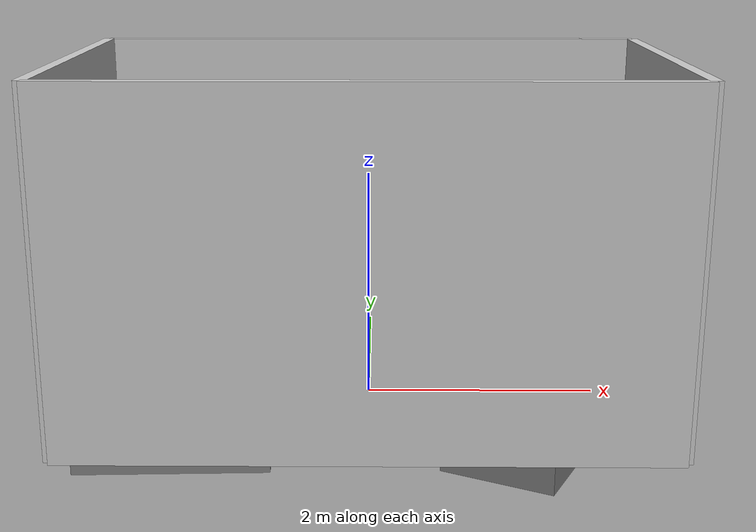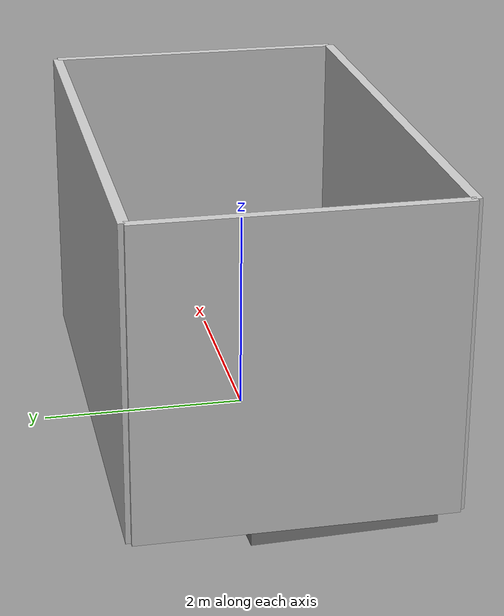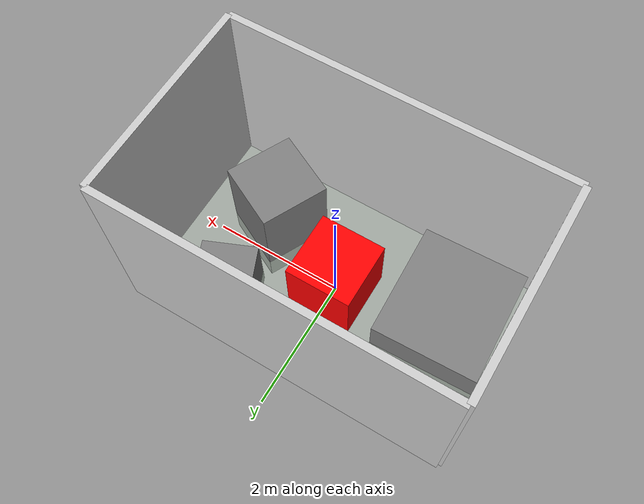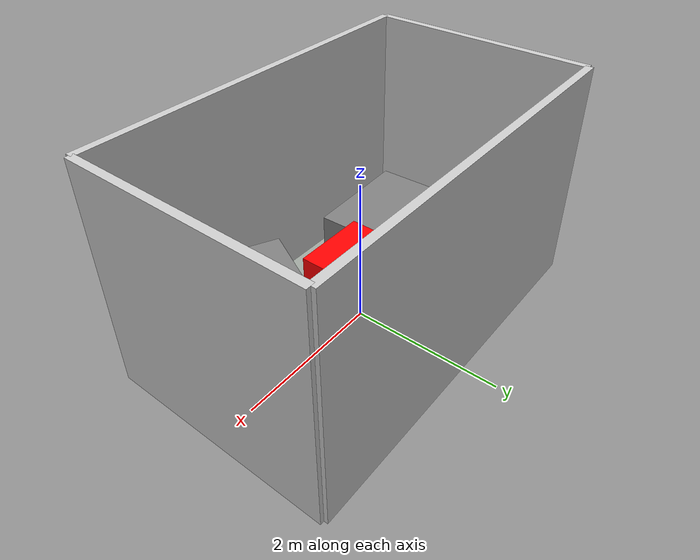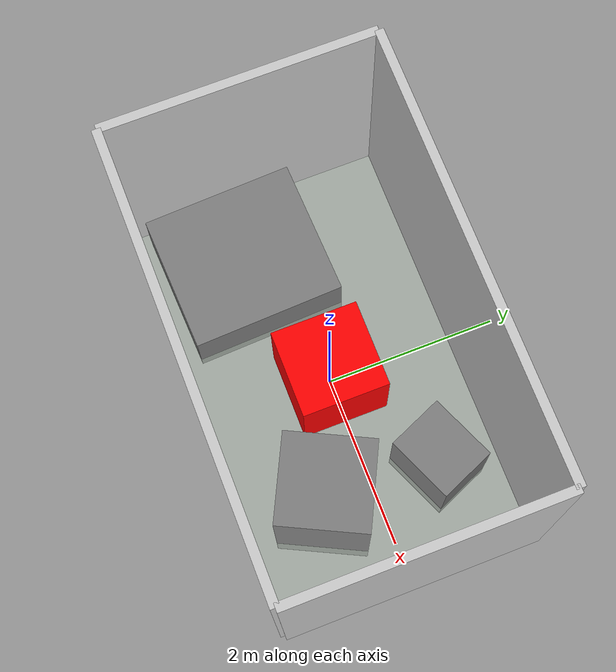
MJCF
<?xml version="1.0" ?>
<mujoco model="generated_environment">
  <asset>
    <texture name="floor_texture" type="cube" builtin="flat" width="100" height="100" rgb1=".9 .9 .9" rgb2=".8 .8 .8"/>
    <material name="floor_material" reflectance="0.2" shininess="0.1" texture="floor_texture" texrepeat="5 5"/>
  </asset>
  <worldbody>
    <geom condim="3" friction="1 0.5 0.01" material="floor_material" name="floor" pos="0 0 0" rgba="0.8 0.9 0.8 1" size="2.5 1.5 0.1" type="plane"/>
    <geom name="wall_1" pos="-2.5 0 1.5" rgba="0.8 0.8 0.8 1" size="0.05 1.5 1.5" type="box"/>
    <geom name="wall_2" pos="2.5 0 1.5" rgba="0.8 0.8 0.8 1" size="0.05 1.5 1.5" type="box"/>
    <geom name="wall_3" pos="0 -1.5 1.5" rgba="0.8 0.8 0.8 1" size="2.5 0.05 1.5" type="box"/>
    <geom name="wall_4" pos="0 1.5 1.5" rgba="0.8 0.8 0.8 1" size="2.5 0.05 1.5" type="box"/>
    <body name="robot" pos="0 0 0.5">
      <geom mass="1" rgba="1 0 0 1" size="0.5 0.5 0.5" type="box"/>
    </body>
    <body name="obstacle_1" pos="1.2895793878764503 -0.5435659194369761 0.41495431811341676" euler="0 0 153.66891919096895">
      <geom mass="0.5" rgba="0.5 0.5 0.5 1" size="0.5063052722146965 0.5106028995921195 0.8299086362268335" type="box"/>
      <joint type="free"/>
    </body>
    <body name="obstacle_2" pos="-1.615585695674082 -0.43600588064590123 0.18506799653324724" euler="0 0 2.1012666274299496">
      <geom mass="0.5" rgba="0.5 0.5 0.5 1" size="0.7986563448939917 0.8791127162920673 0.3701359930664945" type="box"/>
      <joint type="free"/>
    </body>
    <body name="obstacle_3" pos="1.3190976796919562 0.7770461598649763 0.2646147758485786" euler="0 0 112.9910672330856">
      <geom mass="0.5" rgba="0.5 0.5 0.5 1" size="0.3395064373481226 0.4067659232583021 0.5292295516971572" type="box"/>
      <joint type="free"/>
    </body>
  </worldbody>
</mujoco>
